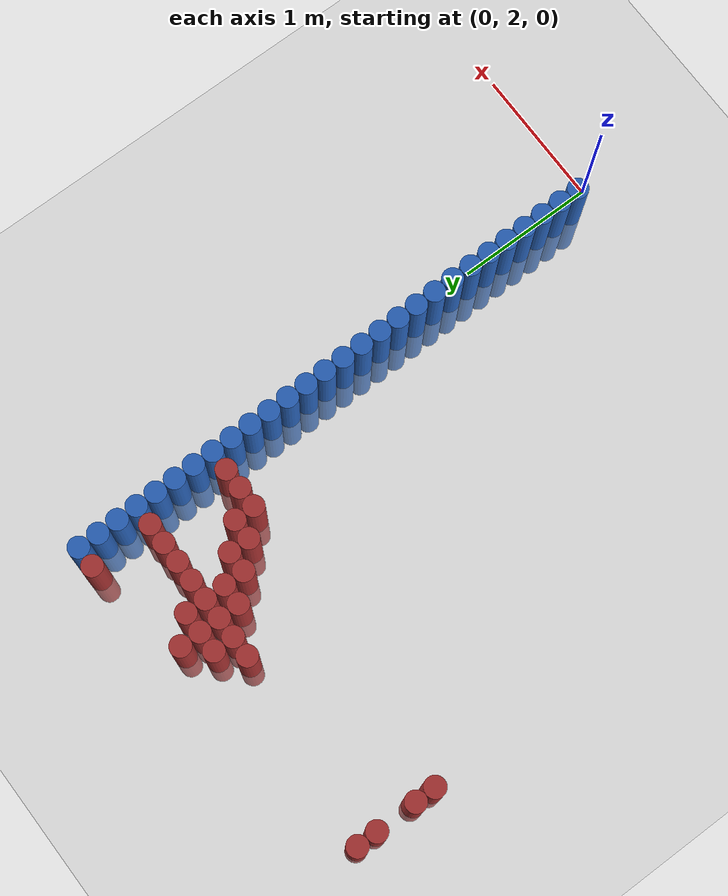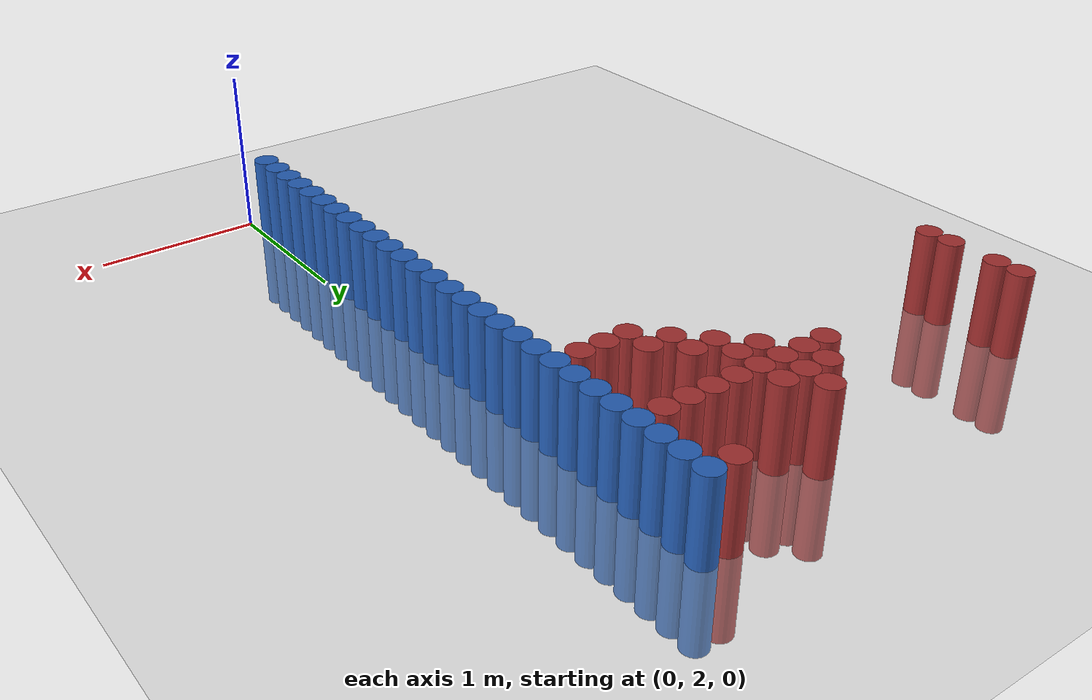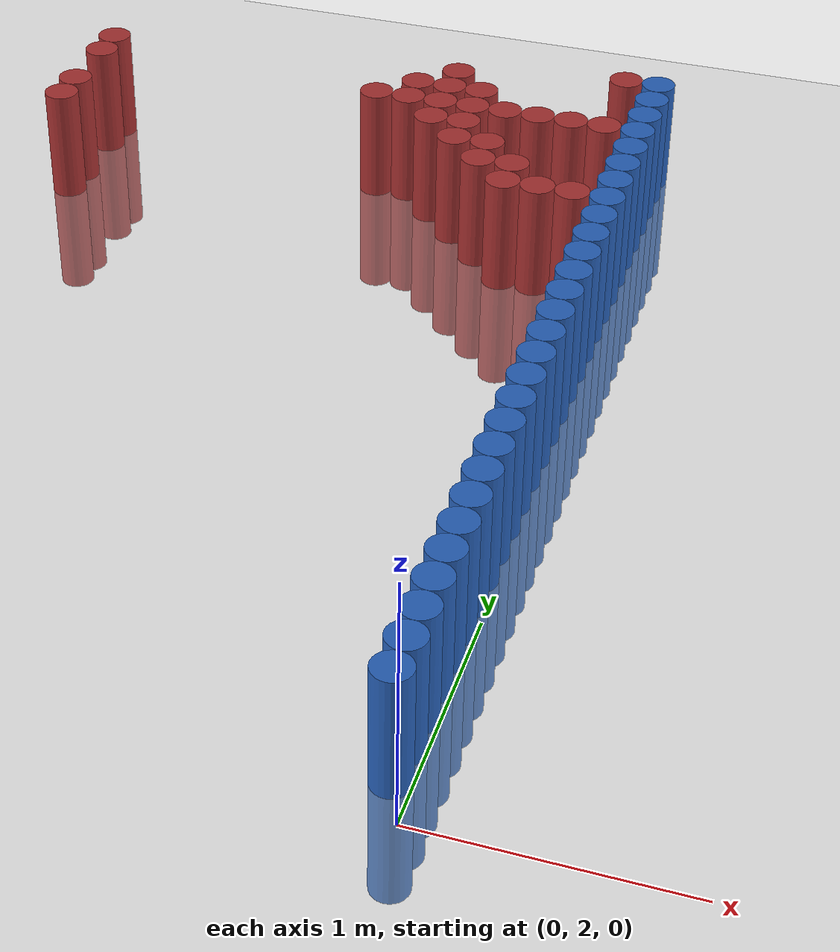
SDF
<sdf version="1.6">
 <world name="world_183">
  <model name="ground_plane">
   <static>1</static>
   <link name="link">
    <collision name="collision">
     <geometry><plane><normal>0 0 1</normal><size>100 100</size></plane></geometry>
     <surface><friction><ode><mu>100</mu><mu2>50</mu2></ode></friction></surface>
    </collision>
    <visual name="visual">
     <cast_shadows>0</cast_shadows>
     <geometry><plane><normal>0 0 1</normal><size>100 100</size></plane></geometry>
     <material>
      <script><uri>file://media/materials/scripts/gazebo.material</uri><name>Gazebo/Grey</name></script>
     </material>
    </visual>
   </link>
  </model>
  <model name="unit_cylinder_56">
   <static>1</static>
   <pose>-0.075000 2.175000 0.000000 0.000000 0.000000 0.000000</pose>
   <link name="link">
    <inertial>
     <mass>1</mass>
     <inertia><ixx>0.145833</ixx><ixy>0</ixy><ixz>0</ixz><iyy>0.145833</iyy><iyz>0</iyz><izz>0.125</izz></inertia>
    </inertial>
    <collision name="collision">
     <geometry><cylinder><radius>0.075000</radius><length>1</length></cylinder></geometry>
    </collision>
    <visual name="visual">
     <geometry><cylinder><radius>0.075000</radius><length>1</length></cylinder></geometry>
     <material>
      <ambient>0.152000 0.379000 0.720000 1</ambient>
      <diffuse>0.152000 0.379000 0.720000 1</diffuse>
     </material>
     <material>
      <script><name>Gazebo/Grey</name><uri>file://media/materials/scripts/gazebo.material</uri></script>
     </material>
    </visual>
   </link>
  </model>
  <model name="unit_cylinder_58">
   <static>1</static>
   <pose>-0.075000 2.325000 0.000000 0.000000 0.000000 0.000000</pose>
   <link name="link">
    <inertial>
     <mass>1</mass>
     <inertia><ixx>0.145833</ixx><ixy>0</ixy><ixz>0</ixz><iyy>0.145833</iyy><iyz>0</iyz><izz>0.125</izz></inertia>
    </inertial>
    <collision name="collision">
     <geometry><cylinder><radius>0.075000</radius><length>1</length></cylinder></geometry>
    </collision>
    <visual name="visual">
     <geometry><cylinder><radius>0.075000</radius><length>1</length></cylinder></geometry>
     <material>
      <ambient>0.152000 0.379000 0.720000 1</ambient>
      <diffuse>0.152000 0.379000 0.720000 1</diffuse>
     </material>
     <material>
      <script><name>Gazebo/Grey</name><uri>file://media/materials/scripts/gazebo.material</uri></script>
     </material>
    </visual>
   </link>
  </model>
  <model name="unit_cylinder_60">
   <static>1</static>
   <pose>-0.075000 2.475000 0.000000 0.000000 0.000000 0.000000</pose>
   <link name="link">
    <inertial>
     <mass>1</mass>
     <inertia><ixx>0.145833</ixx><ixy>0</ixy><ixz>0</ixz><iyy>0.145833</iyy><iyz>0</iyz><izz>0.125</izz></inertia>
    </inertial>
    <collision name="collision">
     <geometry><cylinder><radius>0.075000</radius><length>1</length></cylinder></geometry>
    </collision>
    <visual name="visual">
     <geometry><cylinder><radius>0.075000</radius><length>1</length></cylinder></geometry>
     <material>
      <ambient>0.152000 0.379000 0.720000 1</ambient>
      <diffuse>0.152000 0.379000 0.720000 1</diffuse>
     </material>
     <material>
      <script><name>Gazebo/Grey</name><uri>file://media/materials/scripts/gazebo.material</uri></script>
     </material>
    </visual>
   </link>
  </model>
  <model name="unit_cylinder_62">
   <static>1</static>
   <pose>-0.075000 2.625000 0.000000 0.000000 0.000000 0.000000</pose>
   <link name="link">
    <inertial>
     <mass>1</mass>
     <inertia><ixx>0.145833</ixx><ixy>0</ixy><ixz>0</ixz><iyy>0.145833</iyy><iyz>0</iyz><izz>0.125</izz></inertia>
    </inertial>
    <collision name="collision">
     <geometry><cylinder><radius>0.075000</radius><length>1</length></cylinder></geometry>
    </collision>
    <visual name="visual">
     <geometry><cylinder><radius>0.075000</radius><length>1</length></cylinder></geometry>
     <material>
      <ambient>0.152000 0.379000 0.720000 1</ambient>
      <diffuse>0.152000 0.379000 0.720000 1</diffuse>
     </material>
     <material>
      <script><name>Gazebo/Grey</name><uri>file://media/materials/scripts/gazebo.material</uri></script>
     </material>
    </visual>
   </link>
  </model>
  <model name="unit_cylinder_64">
   <static>1</static>
   <pose>-0.075000 2.775000 0.000000 0.000000 0.000000 0.000000</pose>
   <link name="link">
    <inertial>
     <mass>1</mass>
     <inertia><ixx>0.145833</ixx><ixy>0</ixy><ixz>0</ixz><iyy>0.145833</iyy><iyz>0</iyz><izz>0.125</izz></inertia>
    </inertial>
    <collision name="collision">
     <geometry><cylinder><radius>0.075000</radius><length>1</length></cylinder></geometry>
    </collision>
    <visual name="visual">
     <geometry><cylinder><radius>0.075000</radius><length>1</length></cylinder></geometry>
     <material>
      <ambient>0.152000 0.379000 0.720000 1</ambient>
      <diffuse>0.152000 0.379000 0.720000 1</diffuse>
     </material>
     <material>
      <script><name>Gazebo/Grey</name><uri>file://media/materials/scripts/gazebo.material</uri></script>
     </material>
    </visual>
   </link>
  </model>
  <model name="unit_cylinder_66">
   <static>1</static>
   <pose>-0.075000 2.925000 0.000000 0.000000 0.000000 0.000000</pose>
   <link name="link">
    <inertial>
     <mass>1</mass>
     <inertia><ixx>0.145833</ixx><ixy>0</ixy><ixz>0</ixz><iyy>0.145833</iyy><iyz>0</iyz><izz>0.125</izz></inertia>
    </inertial>
    <collision name="collision">
     <geometry><cylinder><radius>0.075000</radius><length>1</length></cylinder></geometry>
    </collision>
    <visual name="visual">
     <geometry><cylinder><radius>0.075000</radius><length>1</length></cylinder></geometry>
     <material>
      <ambient>0.152000 0.379000 0.720000 1</ambient>
      <diffuse>0.152000 0.379000 0.720000 1</diffuse>
     </material>
     <material>
      <script><name>Gazebo/Grey</name><uri>file://media/materials/scripts/gazebo.material</uri></script>
     </material>
    </visual>
   </link>
  </model>
  <model name="unit_cylinder_68">
   <static>1</static>
   <pose>-0.075000 3.075000 0.000000 0.000000 0.000000 0.000000</pose>
   <link name="link">
    <inertial>
     <mass>1</mass>
     <inertia><ixx>0.145833</ixx><ixy>0</ixy><ixz>0</ixz><iyy>0.145833</iyy><iyz>0</iyz><izz>0.125</izz></inertia>
    </inertial>
    <collision name="collision">
     <geometry><cylinder><radius>0.075000</radius><length>1</length></cylinder></geometry>
    </collision>
    <visual name="visual">
     <geometry><cylinder><radius>0.075000</radius><length>1</length></cylinder></geometry>
     <material>
      <ambient>0.152000 0.379000 0.720000 1</ambient>
      <diffuse>0.152000 0.379000 0.720000 1</diffuse>
     </material>
     <material>
      <script><name>Gazebo/Grey</name><uri>file://media/materials/scripts/gazebo.material</uri></script>
     </material>
    </visual>
   </link>
  </model>
  <model name="unit_cylinder_70">
   <static>1</static>
   <pose>-0.075000 3.225000 0.000000 0.000000 0.000000 0.000000</pose>
   <link name="link">
    <inertial>
     <mass>1</mass>
     <inertia><ixx>0.145833</ixx><ixy>0</ixy><ixz>0</ixz><iyy>0.145833</iyy><iyz>0</iyz><izz>0.125</izz></inertia>
    </inertial>
    <collision name="collision">
     <geometry><cylinder><radius>0.075000</radius><length>1</length></cylinder></geometry>
    </collision>
    <visual name="visual">
     <geometry><cylinder><radius>0.075000</radius><length>1</length></cylinder></geometry>
     <material>
      <ambient>0.152000 0.379000 0.720000 1</ambient>
      <diffuse>0.152000 0.379000 0.720000 1</diffuse>
     </material>
     <material>
      <script><name>Gazebo/Grey</name><uri>file://media/materials/scripts/gazebo.material</uri></script>
     </material>
    </visual>
   </link>
  </model>
  <model name="unit_cylinder_72">
   <static>1</static>
   <pose>-0.075000 3.375000 0.000000 0.000000 0.000000 0.000000</pose>
   <link name="link">
    <inertial>
     <mass>1</mass>
     <inertia><ixx>0.145833</ixx><ixy>0</ixy><ixz>0</ixz><iyy>0.145833</iyy><iyz>0</iyz><izz>0.125</izz></inertia>
    </inertial>
    <collision name="collision">
     <geometry><cylinder><radius>0.075000</radius><length>1</length></cylinder></geometry>
    </collision>
    <visual name="visual">
     <geometry><cylinder><radius>0.075000</radius><length>1</length></cylinder></geometry>
     <material>
      <ambient>0.152000 0.379000 0.720000 1</ambient>
      <diffuse>0.152000 0.379000 0.720000 1</diffuse>
     </material>
     <material>
      <script><name>Gazebo/Grey</name><uri>file://media/materials/scripts/gazebo.material</uri></script>
     </material>
    </visual>
   </link>
  </model>
  <model name="unit_cylinder_74">
   <static>1</static>
   <pose>-0.075000 3.525000 0.000000 0.000000 0.000000 0.000000</pose>
   <link name="link">
    <inertial>
     <mass>1</mass>
     <inertia><ixx>0.145833</ixx><ixy>0</ixy><ixz>0</ixz><iyy>0.145833</iyy><iyz>0</iyz><izz>0.125</izz></inertia>
    </inertial>
    <collision name="collision">
     <geometry><cylinder><radius>0.075000</radius><length>1</length></cylinder></geometry>
    </collision>
    <visual name="visual">
     <geometry><cylinder><radius>0.075000</radius><length>1</length></cylinder></geometry>
     <material>
      <ambient>0.152000 0.379000 0.720000 1</ambient>
      <diffuse>0.152000 0.379000 0.720000 1</diffuse>
     </material>
     <material>
      <script><name>Gazebo/Grey</name><uri>file://media/materials/scripts/gazebo.material</uri></script>
     </material>
    </visual>
   </link>
  </model>
  <model name="unit_cylinder_76">
   <static>1</static>
   <pose>-0.075000 3.675000 0.000000 0.000000 0.000000 0.000000</pose>
   <link name="link">
    <inertial>
     <mass>1</mass>
     <inertia><ixx>0.145833</ixx><ixy>0</ixy><ixz>0</ixz><iyy>0.145833</iyy><iyz>0</iyz><izz>0.125</izz></inertia>
    </inertial>
    <collision name="collision">
     <geometry><cylinder><radius>0.075000</radius><length>1</length></cylinder></geometry>
    </collision>
    <visual name="visual">
     <geometry><cylinder><radius>0.075000</radius><length>1</length></cylinder></geometry>
     <material>
      <ambient>0.152000 0.379000 0.720000 1</ambient>
      <diffuse>0.152000 0.379000 0.720000 1</diffuse>
     </material>
     <material>
      <script><name>Gazebo/Grey</name><uri>file://media/materials/scripts/gazebo.material</uri></script>
     </material>
    </visual>
   </link>
  </model>
  <model name="unit_cylinder_78">
   <static>1</static>
   <pose>-0.075000 3.825000 0.000000 0.000000 0.000000 0.000000</pose>
   <link name="link">
    <inertial>
     <mass>1</mass>
     <inertia><ixx>0.145833</ixx><ixy>0</ixy><ixz>0</ixz><iyy>0.145833</iyy><iyz>0</iyz><izz>0.125</izz></inertia>
    </inertial>
    <collision name="collision">
     <geometry><cylinder><radius>0.075000</radius><length>1</length></cylinder></geometry>
    </collision>
    <visual name="visual">
     <geometry><cylinder><radius>0.075000</radius><length>1</length></cylinder></geometry>
     <material>
      <ambient>0.152000 0.379000 0.720000 1</ambient>
      <diffuse>0.152000 0.379000 0.720000 1</diffuse>
     </material>
     <material>
      <script><name>Gazebo/Grey</name><uri>file://media/materials/scripts/gazebo.material</uri></script>
     </material>
    </visual>
   </link>
  </model>
  <model name="unit_cylinder_80">
   <static>1</static>
   <pose>-0.075000 3.975000 0.000000 0.000000 0.000000 0.000000</pose>
   <link name="link">
    <inertial>
     <mass>1</mass>
     <inertia><ixx>0.145833</ixx><ixy>0</ixy><ixz>0</ixz><iyy>0.145833</iyy><iyz>0</iyz><izz>0.125</izz></inertia>
    </inertial>
    <collision name="collision">
     <geometry><cylinder><radius>0.075000</radius><length>1</length></cylinder></geometry>
    </collision>
    <visual name="visual">
     <geometry><cylinder><radius>0.075000</radius><length>1</length></cylinder></geometry>
     <material>
      <ambient>0.152000 0.379000 0.720000 1</ambient>
      <diffuse>0.152000 0.379000 0.720000 1</diffuse>
     </material>
     <material>
      <script><name>Gazebo/Grey</name><uri>file://media/materials/scripts/gazebo.material</uri></script>
     </material>
    </visual>
   </link>
  </model>
  <model name="unit_cylinder_82">
   <static>1</static>
   <pose>-0.075000 4.125000 0.000000 0.000000 0.000000 0.000000</pose>
   <link name="link">
    <inertial>
     <mass>1</mass>
     <inertia><ixx>0.145833</ixx><ixy>0</ixy><ixz>0</ixz><iyy>0.145833</iyy><iyz>0</iyz><izz>0.125</izz></inertia>
    </inertial>
    <collision name="collision">
     <geometry><cylinder><radius>0.075000</radius><length>1</length></cylinder></geometry>
    </collision>
    <visual name="visual">
     <geometry><cylinder><radius>0.075000</radius><length>1</length></cylinder></geometry>
     <material>
      <ambient>0.152000 0.379000 0.720000 1</ambient>
      <diffuse>0.152000 0.379000 0.720000 1</diffuse>
     </material>
     <material>
      <script><name>Gazebo/Grey</name><uri>file://media/materials/scripts/gazebo.material</uri></script>
     </material>
    </visual>
   </link>
  </model>
  <model name="unit_cylinder_84">
   <static>1</static>
   <pose>-0.075000 4.275000 0.000000 0.000000 0.000000 0.000000</pose>
   <link name="link">
    <inertial>
     <mass>1</mass>
     <inertia><ixx>0.145833</ixx><ixy>0</ixy><ixz>0</ixz><iyy>0.145833</iyy><iyz>0</iyz><izz>0.125</izz></inertia>
    </inertial>
    <collision name="collision">
     <geometry><cylinder><radius>0.075000</radius><length>1</length></cylinder></geometry>
    </collision>
    <visual name="visual">
     <geometry><cylinder><radius>0.075000</radius><length>1</length></cylinder></geometry>
     <material>
      <ambient>0.152000 0.379000 0.720000 1</ambient>
      <diffuse>0.152000 0.379000 0.720000 1</diffuse>
     </material>
     <material>
      <script><name>Gazebo/Grey</name><uri>file://media/materials/scripts/gazebo.material</uri></script>
     </material>
    </visual>
   </link>
  </model>
  <model name="unit_cylinder_86">
   <static>1</static>
   <pose>-0.075000 4.425000 0.000000 0.000000 0.000000 0.000000</pose>
   <link name="link">
    <inertial>
     <mass>1</mass>
     <inertia><ixx>0.145833</ixx><ixy>0</ixy><ixz>0</ixz><iyy>0.145833</iyy><iyz>0</iyz><izz>0.125</izz></inertia>
    </inertial>
    <collision name="collision">
     <geometry><cylinder><radius>0.075000</radius><length>1</length></cylinder></geometry>
    </collision>
    <visual name="visual">
     <geometry><cylinder><radius>0.075000</radius><length>1</length></cylinder></geometry>
     <material>
      <ambient>0.152000 0.379000 0.720000 1</ambient>
      <diffuse>0.152000 0.379000 0.720000 1</diffuse>
     </material>
     <material>
      <script><name>Gazebo/Grey</name><uri>file://media/materials/scripts/gazebo.material</uri></script>
     </material>
    </visual>
   </link>
  </model>
  <model name="unit_cylinder_88">
   <static>1</static>
   <pose>-0.075000 4.575000 0.000000 0.000000 0.000000 0.000000</pose>
   <link name="link">
    <inertial>
     <mass>1</mass>
     <inertia><ixx>0.145833</ixx><ixy>0</ixy><ixz>0</ixz><iyy>0.145833</iyy><iyz>0</iyz><izz>0.125</izz></inertia>
    </inertial>
    <collision name="collision">
     <geometry><cylinder><radius>0.075000</radius><length>1</length></cylinder></geometry>
    </collision>
    <visual name="visual">
     <geometry><cylinder><radius>0.075000</radius><length>1</length></cylinder></geometry>
     <material>
      <ambient>0.152000 0.379000 0.720000 1</ambient>
      <diffuse>0.152000 0.379000 0.720000 1</diffuse>
     </material>
     <material>
      <script><name>Gazebo/Grey</name><uri>file://media/materials/scripts/gazebo.material</uri></script>
     </material>
    </visual>
   </link>
  </model>
  <model name="unit_cylinder_90">
   <static>1</static>
   <pose>-0.075000 4.725000 0.000000 0.000000 0.000000 0.000000</pose>
   <link name="link">
    <inertial>
     <mass>1</mass>
     <inertia><ixx>0.145833</ixx><ixy>0</ixy><ixz>0</ixz><iyy>0.145833</iyy><iyz>0</iyz><izz>0.125</izz></inertia>
    </inertial>
    <collision name="collision">
     <geometry><cylinder><radius>0.075000</radius><length>1</length></cylinder></geometry>
    </collision>
    <visual name="visual">
     <geometry><cylinder><radius>0.075000</radius><length>1</length></cylinder></geometry>
     <material>
      <ambient>0.152000 0.379000 0.720000 1</ambient>
      <diffuse>0.152000 0.379000 0.720000 1</diffuse>
     </material>
     <material>
      <script><name>Gazebo/Grey</name><uri>file://media/materials/scripts/gazebo.material</uri></script>
     </material>
    </visual>
   </link>
  </model>
  <model name="unit_cylinder_92">
   <static>1</static>
   <pose>-0.075000 4.875000 0.000000 0.000000 0.000000 0.000000</pose>
   <link name="link">
    <inertial>
     <mass>1</mass>
     <inertia><ixx>0.145833</ixx><ixy>0</ixy><ixz>0</ixz><iyy>0.145833</iyy><iyz>0</iyz><izz>0.125</izz></inertia>
    </inertial>
    <collision name="collision">
     <geometry><cylinder><radius>0.075000</radius><length>1</length></cylinder></geometry>
    </collision>
    <visual name="visual">
     <geometry><cylinder><radius>0.075000</radius><length>1</length></cylinder></geometry>
     <material>
      <ambient>0.152000 0.379000 0.720000 1</ambient>
      <diffuse>0.152000 0.379000 0.720000 1</diffuse>
     </material>
     <material>
      <script><name>Gazebo/Grey</name><uri>file://media/materials/scripts/gazebo.material</uri></script>
     </material>
    </visual>
   </link>
  </model>
  <model name="unit_cylinder_94">
   <static>1</static>
   <pose>-0.075000 5.025000 0.000000 0.000000 0.000000 0.000000</pose>
   <link name="link">
    <inertial>
     <mass>1</mass>
     <inertia><ixx>0.145833</ixx><ixy>0</ixy><ixz>0</ixz><iyy>0.145833</iyy><iyz>0</iyz><izz>0.125</izz></inertia>
    </inertial>
    <collision name="collision">
     <geometry><cylinder><radius>0.075000</radius><length>1</length></cylinder></geometry>
    </collision>
    <visual name="visual">
     <geometry><cylinder><radius>0.075000</radius><length>1</length></cylinder></geometry>
     <material>
      <ambient>0.152000 0.379000 0.720000 1</ambient>
      <diffuse>0.152000 0.379000 0.720000 1</diffuse>
     </material>
     <material>
      <script><name>Gazebo/Grey</name><uri>file://media/materials/scripts/gazebo.material</uri></script>
     </material>
    </visual>
   </link>
  </model>
  <model name="unit_cylinder_204">
   <static>1</static>
   <pose>-2.625000 5.325000 0.000000 0.000000 0.000000 0.000000</pose>
   <link name="link">
    <inertial>
     <mass>1</mass>
     <inertia><ixx>0.145833</ixx><ixy>0</ixy><ixz>0</ixz><iyy>0.145833</iyy><iyz>0</iyz><izz>0.125</izz></inertia>
    </inertial>
    <collision name="collision">
     <geometry><cylinder><radius>0.075000</radius><length>1</length></cylinder></geometry>
    </collision>
    <visual name="visual">
     <geometry><cylinder><radius>0.075000</radius><length>1</length></cylinder></geometry>
     <material>
      <ambient>0.648000 0.192000 0.192000 1</ambient>
      <diffuse>0.648000 0.192000 0.192000 1</diffuse>
     </material>
     <material>
      <script><name>Gazebo/Grey</name><uri>file://media/materials/scripts/gazebo.material</uri></script>
     </material>
    </visual>
   </link>
  </model>
  <model name="unit_cylinder_205">
   <static>1</static>
   <pose>-2.625000 5.475000 0.000000 0.000000 0.000000 0.000000</pose>
   <link name="link">
    <inertial>
     <mass>1</mass>
     <inertia><ixx>0.145833</ixx><ixy>0</ixy><ixz>0</ixz><iyy>0.145833</iyy><iyz>0</iyz><izz>0.125</izz></inertia>
    </inertial>
    <collision name="collision">
     <geometry><cylinder><radius>0.075000</radius><length>1</length></cylinder></geometry>
    </collision>
    <visual name="visual">
     <geometry><cylinder><radius>0.075000</radius><length>1</length></cylinder></geometry>
     <material>
      <ambient>0.648000 0.192000 0.192000 1</ambient>
      <diffuse>0.648000 0.192000 0.192000 1</diffuse>
     </material>
     <material>
      <script><name>Gazebo/Grey</name><uri>file://media/materials/scripts/gazebo.material</uri></script>
     </material>
    </visual>
   </link>
  </model>
  <model name="unit_cylinder_206">
   <static>1</static>
   <pose>-2.625000 5.775000 0.000000 0.000000 0.000000 0.000000</pose>
   <link name="link">
    <inertial>
     <mass>1</mass>
     <inertia><ixx>0.145833</ixx><ixy>0</ixy><ixz>0</ixz><iyy>0.145833</iyy><iyz>0</iyz><izz>0.125</izz></inertia>
    </inertial>
    <collision name="collision">
     <geometry><cylinder><radius>0.075000</radius><length>1</length></cylinder></geometry>
    </collision>
    <visual name="visual">
     <geometry><cylinder><radius>0.075000</radius><length>1</length></cylinder></geometry>
     <material>
      <ambient>0.648000 0.192000 0.192000 1</ambient>
      <diffuse>0.648000 0.192000 0.192000 1</diffuse>
     </material>
     <material>
      <script><name>Gazebo/Grey</name><uri>file://media/materials/scripts/gazebo.material</uri></script>
     </material>
    </visual>
   </link>
  </model>
  <model name="unit_cylinder_207">
   <static>1</static>
   <pose>-2.625000 5.925000 0.000000 0.000000 0.000000 0.000000</pose>
   <link name="link">
    <inertial>
     <mass>1</mass>
     <inertia><ixx>0.145833</ixx><ixy>0</ixy><ixz>0</ixz><iyy>0.145833</iyy><iyz>0</iyz><izz>0.125</izz></inertia>
    </inertial>
    <collision name="collision">
     <geometry><cylinder><radius>0.075000</radius><length>1</length></cylinder></geometry>
    </collision>
    <visual name="visual">
     <geometry><cylinder><radius>0.075000</radius><length>1</length></cylinder></geometry>
     <material>
      <ambient>0.648000 0.192000 0.192000 1</ambient>
      <diffuse>0.648000 0.192000 0.192000 1</diffuse>
     </material>
     <material>
      <script><name>Gazebo/Grey</name><uri>file://media/materials/scripts/gazebo.material</uri></script>
     </material>
    </visual>
   </link>
  </model>
  <model name="unit_cylinder_242">
   <static>1</static>
   <pose>-1.275000 5.775000 0.000000 0.000000 0.000000 0.000000</pose>
   <link name="link">
    <inertial>
     <mass>1</mass>
     <inertia><ixx>0.145833</ixx><ixy>0</ixy><ixz>0</ixz><iyy>0.145833</iyy><iyz>0</iyz><izz>0.125</izz></inertia>
    </inertial>
    <collision name="collision">
     <geometry><cylinder><radius>0.075000</radius><length>1</length></cylinder></geometry>
    </collision>
    <visual name="visual">
     <geometry><cylinder><radius>0.075000</radius><length>1</length></cylinder></geometry>
     <material>
      <ambient>0.648000 0.192000 0.192000 1</ambient>
      <diffuse>0.648000 0.192000 0.192000 1</diffuse>
     </material>
     <material>
      <script><name>Gazebo/Grey</name><uri>file://media/materials/scripts/gazebo.material</uri></script>
     </material>
    </visual>
   </link>
  </model>
  <model name="unit_cylinder_245">
   <static>1</static>
   <pose>-1.125000 5.775000 0.000000 0.000000 0.000000 0.000000</pose>
   <link name="link">
    <inertial>
     <mass>1</mass>
     <inertia><ixx>0.145833</ixx><ixy>0</ixy><ixz>0</ixz><iyy>0.145833</iyy><iyz>0</iyz><izz>0.125</izz></inertia>
    </inertial>
    <collision name="collision">
     <geometry><cylinder><radius>0.075000</radius><length>1</length></cylinder></geometry>
    </collision>
    <visual name="visual">
     <geometry><cylinder><radius>0.075000</radius><length>1</length></cylinder></geometry>
     <material>
      <ambient>0.648000 0.192000 0.192000 1</ambient>
      <diffuse>0.648000 0.192000 0.192000 1</diffuse>
     </material>
     <material>
      <script><name>Gazebo/Grey</name><uri>file://media/materials/scripts/gazebo.material</uri></script>
     </material>
    </visual>
   </link>
  </model>
  <model name="unit_cylinder_246">
   <static>1</static>
   <pose>-1.125000 5.925000 0.000000 0.000000 0.000000 0.000000</pose>
   <link name="link">
    <inertial>
     <mass>1</mass>
     <inertia><ixx>0.145833</ixx><ixy>0</ixy><ixz>0</ixz><iyy>0.145833</iyy><iyz>0</iyz><izz>0.125</izz></inertia>
    </inertial>
    <collision name="collision">
     <geometry><cylinder><radius>0.075000</radius><length>1</length></cylinder></geometry>
    </collision>
    <visual name="visual">
     <geometry><cylinder><radius>0.075000</radius><length>1</length></cylinder></geometry>
     <material>
      <ambient>0.648000 0.192000 0.192000 1</ambient>
      <diffuse>0.648000 0.192000 0.192000 1</diffuse>
     </material>
     <material>
      <script><name>Gazebo/Grey</name><uri>file://media/materials/scripts/gazebo.material</uri></script>
     </material>
    </visual>
   </link>
  </model>
  <model name="unit_cylinder_249">
   <static>1</static>
   <pose>-0.975000 5.625000 0.000000 0.000000 0.000000 0.000000</pose>
   <link name="link">
    <inertial>
     <mass>1</mass>
     <inertia><ixx>0.145833</ixx><ixy>0</ixy><ixz>0</ixz><iyy>0.145833</iyy><iyz>0</iyz><izz>0.125</izz></inertia>
    </inertial>
    <collision name="collision">
     <geometry><cylinder><radius>0.075000</radius><length>1</length></cylinder></geometry>
    </collision>
    <visual name="visual">
     <geometry><cylinder><radius>0.075000</radius><length>1</length></cylinder></geometry>
     <material>
      <ambient>0.648000 0.192000 0.192000 1</ambient>
      <diffuse>0.648000 0.192000 0.192000 1</diffuse>
     </material>
     <material>
      <script><name>Gazebo/Grey</name><uri>file://media/materials/scripts/gazebo.material</uri></script>
     </material>
    </visual>
   </link>
  </model>
  <model name="unit_cylinder_250">
   <static>1</static>
   <pose>-0.975000 5.775000 0.000000 0.000000 0.000000 0.000000</pose>
   <link name="link">
    <inertial>
     <mass>1</mass>
     <inertia><ixx>0.145833</ixx><ixy>0</ixy><ixz>0</ixz><iyy>0.145833</iyy><iyz>0</iyz><izz>0.125</izz></inertia>
    </inertial>
    <collision name="collision">
     <geometry><cylinder><radius>0.075000</radius><length>1</length></cylinder></geometry>
    </collision>
    <visual name="visual">
     <geometry><cylinder><radius>0.075000</radius><length>1</length></cylinder></geometry>
     <material>
      <ambient>0.648000 0.192000 0.192000 1</ambient>
      <diffuse>0.648000 0.192000 0.192000 1</diffuse>
     </material>
     <material>
      <script><name>Gazebo/Grey</name><uri>file://media/materials/scripts/gazebo.material</uri></script>
     </material>
    </visual>
   </link>
  </model>
  <model name="unit_cylinder_251">
   <static>1</static>
   <pose>-0.975000 5.925000 0.000000 0.000000 0.000000 0.000000</pose>
   <link name="link">
    <inertial>
     <mass>1</mass>
     <inertia><ixx>0.145833</ixx><ixy>0</ixy><ixz>0</ixz><iyy>0.145833</iyy><iyz>0</iyz><izz>0.125</izz></inertia>
    </inertial>
    <collision name="collision">
     <geometry><cylinder><radius>0.075000</radius><length>1</length></cylinder></geometry>
    </collision>
    <visual name="visual">
     <geometry><cylinder><radius>0.075000</radius><length>1</length></cylinder></geometry>
     <material>
      <ambient>0.648000 0.192000 0.192000 1</ambient>
      <diffuse>0.648000 0.192000 0.192000 1</diffuse>
     </material>
     <material>
      <script><name>Gazebo/Grey</name><uri>file://media/materials/scripts/gazebo.material</uri></script>
     </material>
    </visual>
   </link>
  </model>
  <model name="unit_cylinder_252">
   <static>1</static>
   <pose>-0.975000 6.075000 0.000000 0.000000 0.000000 0.000000</pose>
   <link name="link">
    <inertial>
     <mass>1</mass>
     <inertia><ixx>0.145833</ixx><ixy>0</ixy><ixz>0</ixz><iyy>0.145833</iyy><iyz>0</iyz><izz>0.125</izz></inertia>
    </inertial>
    <collision name="collision">
     <geometry><cylinder><radius>0.075000</radius><length>1</length></cylinder></geometry>
    </collision>
    <visual name="visual">
     <geometry><cylinder><radius>0.075000</radius><length>1</length></cylinder></geometry>
     <material>
      <ambient>0.648000 0.192000 0.192000 1</ambient>
      <diffuse>0.648000 0.192000 0.192000 1</diffuse>
     </material>
     <material>
      <script><name>Gazebo/Grey</name><uri>file://media/materials/scripts/gazebo.material</uri></script>
     </material>
    </visual>
   </link>
  </model>
  <model name="unit_cylinder_255">
   <static>1</static>
   <pose>-0.825000 5.475000 0.000000 0.000000 0.000000 0.000000</pose>
   <link name="link">
    <inertial>
     <mass>1</mass>
     <inertia><ixx>0.145833</ixx><ixy>0</ixy><ixz>0</ixz><iyy>0.145833</iyy><iyz>0</iyz><izz>0.125</izz></inertia>
    </inertial>
    <collision name="collision">
     <geometry><cylinder><radius>0.075000</radius><length>1</length></cylinder></geometry>
    </collision>
    <visual name="visual">
     <geometry><cylinder><radius>0.075000</radius><length>1</length></cylinder></geometry>
     <material>
      <ambient>0.648000 0.192000 0.192000 1</ambient>
      <diffuse>0.648000 0.192000 0.192000 1</diffuse>
     </material>
     <material>
      <script><name>Gazebo/Grey</name><uri>file://media/materials/scripts/gazebo.material</uri></script>
     </material>
    </visual>
   </link>
  </model>
  <model name="unit_cylinder_256">
   <static>1</static>
   <pose>-0.825000 5.625000 0.000000 0.000000 0.000000 0.000000</pose>
   <link name="link">
    <inertial>
     <mass>1</mass>
     <inertia><ixx>0.145833</ixx><ixy>0</ixy><ixz>0</ixz><iyy>0.145833</iyy><iyz>0</iyz><izz>0.125</izz></inertia>
    </inertial>
    <collision name="collision">
     <geometry><cylinder><radius>0.075000</radius><length>1</length></cylinder></geometry>
    </collision>
    <visual name="visual">
     <geometry><cylinder><radius>0.075000</radius><length>1</length></cylinder></geometry>
     <material>
      <ambient>0.648000 0.192000 0.192000 1</ambient>
      <diffuse>0.648000 0.192000 0.192000 1</diffuse>
     </material>
     <material>
      <script><name>Gazebo/Grey</name><uri>file://media/materials/scripts/gazebo.material</uri></script>
     </material>
    </visual>
   </link>
  </model>
  <model name="unit_cylinder_257">
   <static>1</static>
   <pose>-0.825000 5.775000 0.000000 0.000000 0.000000 0.000000</pose>
   <link name="link">
    <inertial>
     <mass>1</mass>
     <inertia><ixx>0.145833</ixx><ixy>0</ixy><ixz>0</ixz><iyy>0.145833</iyy><iyz>0</iyz><izz>0.125</izz></inertia>
    </inertial>
    <collision name="collision">
     <geometry><cylinder><radius>0.075000</radius><length>1</length></cylinder></geometry>
    </collision>
    <visual name="visual">
     <geometry><cylinder><radius>0.075000</radius><length>1</length></cylinder></geometry>
     <material>
      <ambient>0.648000 0.192000 0.192000 1</ambient>
      <diffuse>0.648000 0.192000 0.192000 1</diffuse>
     </material>
     <material>
      <script><name>Gazebo/Grey</name><uri>file://media/materials/scripts/gazebo.material</uri></script>
     </material>
    </visual>
   </link>
  </model>
  <model name="unit_cylinder_258">
   <static>1</static>
   <pose>-0.825000 5.925000 0.000000 0.000000 0.000000 0.000000</pose>
   <link name="link">
    <inertial>
     <mass>1</mass>
     <inertia><ixx>0.145833</ixx><ixy>0</ixy><ixz>0</ixz><iyy>0.145833</iyy><iyz>0</iyz><izz>0.125</izz></inertia>
    </inertial>
    <collision name="collision">
     <geometry><cylinder><radius>0.075000</radius><length>1</length></cylinder></geometry>
    </collision>
    <visual name="visual">
     <geometry><cylinder><radius>0.075000</radius><length>1</length></cylinder></geometry>
     <material>
      <ambient>0.648000 0.192000 0.192000 1</ambient>
      <diffuse>0.648000 0.192000 0.192000 1</diffuse>
     </material>
     <material>
      <script><name>Gazebo/Grey</name><uri>file://media/materials/scripts/gazebo.material</uri></script>
     </material>
    </visual>
   </link>
  </model>
  <model name="unit_cylinder_260">
   <static>1</static>
   <pose>-0.675000 5.325000 0.000000 0.000000 0.000000 0.000000</pose>
   <link name="link">
    <inertial>
     <mass>1</mass>
     <inertia><ixx>0.145833</ixx><ixy>0</ixy><ixz>0</ixz><iyy>0.145833</iyy><iyz>0</iyz><izz>0.125</izz></inertia>
    </inertial>
    <collision name="collision">
     <geometry><cylinder><radius>0.075000</radius><length>1</length></cylinder></geometry>
    </collision>
    <visual name="visual">
     <geometry><cylinder><radius>0.075000</radius><length>1</length></cylinder></geometry>
     <material>
      <ambient>0.648000 0.192000 0.192000 1</ambient>
      <diffuse>0.648000 0.192000 0.192000 1</diffuse>
     </material>
     <material>
      <script><name>Gazebo/Grey</name><uri>file://media/materials/scripts/gazebo.material</uri></script>
     </material>
    </visual>
   </link>
  </model>
  <model name="unit_cylinder_261">
   <static>1</static>
   <pose>-0.675000 5.475000 0.000000 0.000000 0.000000 0.000000</pose>
   <link name="link">
    <inertial>
     <mass>1</mass>
     <inertia><ixx>0.145833</ixx><ixy>0</ixy><ixz>0</ixz><iyy>0.145833</iyy><iyz>0</iyz><izz>0.125</izz></inertia>
    </inertial>
    <collision name="collision">
     <geometry><cylinder><radius>0.075000</radius><length>1</length></cylinder></geometry>
    </collision>
    <visual name="visual">
     <geometry><cylinder><radius>0.075000</radius><length>1</length></cylinder></geometry>
     <material>
      <ambient>0.648000 0.192000 0.192000 1</ambient>
      <diffuse>0.648000 0.192000 0.192000 1</diffuse>
     </material>
     <material>
      <script><name>Gazebo/Grey</name><uri>file://media/materials/scripts/gazebo.material</uri></script>
     </material>
    </visual>
   </link>
  </model>
  <model name="unit_cylinder_262">
   <static>1</static>
   <pose>-0.675000 5.775000 0.000000 0.000000 0.000000 0.000000</pose>
   <link name="link">
    <inertial>
     <mass>1</mass>
     <inertia><ixx>0.145833</ixx><ixy>0</ixy><ixz>0</ixz><iyy>0.145833</iyy><iyz>0</iyz><izz>0.125</izz></inertia>
    </inertial>
    <collision name="collision">
     <geometry><cylinder><radius>0.075000</radius><length>1</length></cylinder></geometry>
    </collision>
    <visual name="visual">
     <geometry><cylinder><radius>0.075000</radius><length>1</length></cylinder></geometry>
     <material>
      <ambient>0.648000 0.192000 0.192000 1</ambient>
      <diffuse>0.648000 0.192000 0.192000 1</diffuse>
     </material>
     <material>
      <script><name>Gazebo/Grey</name><uri>file://media/materials/scripts/gazebo.material</uri></script>
     </material>
    </visual>
   </link>
  </model>
  <model name="unit_cylinder_263">
   <static>1</static>
   <pose>-0.525000 5.175000 0.000000 0.000000 0.000000 0.000000</pose>
   <link name="link">
    <inertial>
     <mass>1</mass>
     <inertia><ixx>0.145833</ixx><ixy>0</ixy><ixz>0</ixz><iyy>0.145833</iyy><iyz>0</iyz><izz>0.125</izz></inertia>
    </inertial>
    <collision name="collision">
     <geometry><cylinder><radius>0.075000</radius><length>1</length></cylinder></geometry>
    </collision>
    <visual name="visual">
     <geometry><cylinder><radius>0.075000</radius><length>1</length></cylinder></geometry>
     <material>
      <ambient>0.648000 0.192000 0.192000 1</ambient>
      <diffuse>0.648000 0.192000 0.192000 1</diffuse>
     </material>
     <material>
      <script><name>Gazebo/Grey</name><uri>file://media/materials/scripts/gazebo.material</uri></script>
     </material>
    </visual>
   </link>
  </model>
  <model name="unit_cylinder_264">
   <static>1</static>
   <pose>-0.525000 5.325000 0.000000 0.000000 0.000000 0.000000</pose>
   <link name="link">
    <inertial>
     <mass>1</mass>
     <inertia><ixx>0.145833</ixx><ixy>0</ixy><ixz>0</ixz><iyy>0.145833</iyy><iyz>0</iyz><izz>0.125</izz></inertia>
    </inertial>
    <collision name="collision">
     <geometry><cylinder><radius>0.075000</radius><length>1</length></cylinder></geometry>
    </collision>
    <visual name="visual">
     <geometry><cylinder><radius>0.075000</radius><length>1</length></cylinder></geometry>
     <material>
      <ambient>0.648000 0.192000 0.192000 1</ambient>
      <diffuse>0.648000 0.192000 0.192000 1</diffuse>
     </material>
     <material>
      <script><name>Gazebo/Grey</name><uri>file://media/materials/scripts/gazebo.material</uri></script>
     </material>
    </visual>
   </link>
  </model>
  <model name="unit_cylinder_265">
   <static>1</static>
   <pose>-0.525000 5.775000 0.000000 0.000000 0.000000 0.000000</pose>
   <link name="link">
    <inertial>
     <mass>1</mass>
     <inertia><ixx>0.145833</ixx><ixy>0</ixy><ixz>0</ixz><iyy>0.145833</iyy><iyz>0</iyz><izz>0.125</izz></inertia>
    </inertial>
    <collision name="collision">
     <geometry><cylinder><radius>0.075000</radius><length>1</length></cylinder></geometry>
    </collision>
    <visual name="visual">
     <geometry><cylinder><radius>0.075000</radius><length>1</length></cylinder></geometry>
     <material>
      <ambient>0.648000 0.192000 0.192000 1</ambient>
      <diffuse>0.648000 0.192000 0.192000 1</diffuse>
     </material>
     <material>
      <script><name>Gazebo/Grey</name><uri>file://media/materials/scripts/gazebo.material</uri></script>
     </material>
    </visual>
   </link>
  </model>
  <model name="unit_cylinder_269">
   <static>1</static>
   <pose>-0.375000 5.175000 0.000000 0.000000 0.000000 0.000000</pose>
   <link name="link">
    <inertial>
     <mass>1</mass>
     <inertia><ixx>0.145833</ixx><ixy>0</ixy><ixz>0</ixz><iyy>0.145833</iyy><iyz>0</iyz><izz>0.125</izz></inertia>
    </inertial>
    <collision name="collision">
     <geometry><cylinder><radius>0.075000</radius><length>1</length></cylinder></geometry>
    </collision>
    <visual name="visual">
     <geometry><cylinder><radius>0.075000</radius><length>1</length></cylinder></geometry>
     <material>
      <ambient>0.648000 0.192000 0.192000 1</ambient>
      <diffuse>0.648000 0.192000 0.192000 1</diffuse>
     </material>
     <material>
      <script><name>Gazebo/Grey</name><uri>file://media/materials/scripts/gazebo.material</uri></script>
     </material>
    </visual>
   </link>
  </model>
  <model name="unit_cylinder_270">
   <static>1</static>
   <pose>-0.375000 5.775000 0.000000 0.000000 0.000000 0.000000</pose>
   <link name="link">
    <inertial>
     <mass>1</mass>
     <inertia><ixx>0.145833</ixx><ixy>0</ixy><ixz>0</ixz><iyy>0.145833</iyy><iyz>0</iyz><izz>0.125</izz></inertia>
    </inertial>
    <collision name="collision">
     <geometry><cylinder><radius>0.075000</radius><length>1</length></cylinder></geometry>
    </collision>
    <visual name="visual">
     <geometry><cylinder><radius>0.075000</radius><length>1</length></cylinder></geometry>
     <material>
      <ambient>0.648000 0.192000 0.192000 1</ambient>
      <diffuse>0.648000 0.192000 0.192000 1</diffuse>
     </material>
     <material>
      <script><name>Gazebo/Grey</name><uri>file://media/materials/scripts/gazebo.material</uri></script>
     </material>
    </visual>
   </link>
  </model>
  <model name="unit_cylinder_284">
   <static>1</static>
   <pose>-0.225000 5.175000 0.000000 0.000000 0.000000 0.000000</pose>
   <link name="link">
    <inertial>
     <mass>1</mass>
     <inertia><ixx>0.145833</ixx><ixy>0</ixy><ixz>0</ixz><iyy>0.145833</iyy><iyz>0</iyz><izz>0.125</izz></inertia>
    </inertial>
    <collision name="collision">
     <geometry><cylinder><radius>0.075000</radius><length>1</length></cylinder></geometry>
    </collision>
    <visual name="visual">
     <geometry><cylinder><radius>0.075000</radius><length>1</length></cylinder></geometry>
     <material>
      <ambient>0.648000 0.192000 0.192000 1</ambient>
      <diffuse>0.648000 0.192000 0.192000 1</diffuse>
     </material>
     <material>
      <script><name>Gazebo/Grey</name><uri>file://media/materials/scripts/gazebo.material</uri></script>
     </material>
    </visual>
   </link>
  </model>
  <model name="unit_cylinder_285">
   <static>1</static>
   <pose>-0.225000 5.775000 0.000000 0.000000 0.000000 0.000000</pose>
   <link name="link">
    <inertial>
     <mass>1</mass>
     <inertia><ixx>0.145833</ixx><ixy>0</ixy><ixz>0</ixz><iyy>0.145833</iyy><iyz>0</iyz><izz>0.125</izz></inertia>
    </inertial>
    <collision name="collision">
     <geometry><cylinder><radius>0.075000</radius><length>1</length></cylinder></geometry>
    </collision>
    <visual name="visual">
     <geometry><cylinder><radius>0.075000</radius><length>1</length></cylinder></geometry>
     <material>
      <ambient>0.648000 0.192000 0.192000 1</ambient>
      <diffuse>0.648000 0.192000 0.192000 1</diffuse>
     </material>
     <material>
      <script><name>Gazebo/Grey</name><uri>file://media/materials/scripts/gazebo.material</uri></script>
     </material>
    </visual>
   </link>
  </model>
  <model name="unit_cylinder_286">
   <static>1</static>
   <pose>-0.225000 6.225000 0.000000 0.000000 0.000000 0.000000</pose>
   <link name="link">
    <inertial>
     <mass>1</mass>
     <inertia><ixx>0.145833</ixx><ixy>0</ixy><ixz>0</ixz><iyy>0.145833</iyy><iyz>0</iyz><izz>0.125</izz></inertia>
    </inertial>
    <collision name="collision">
     <geometry><cylinder><radius>0.075000</radius><length>1</length></cylinder></geometry>
    </collision>
    <visual name="visual">
     <geometry><cylinder><radius>0.075000</radius><length>1</length></cylinder></geometry>
     <material>
      <ambient>0.648000 0.192000 0.192000 1</ambient>
      <diffuse>0.648000 0.192000 0.192000 1</diffuse>
     </material>
     <material>
      <script><name>Gazebo/Grey</name><uri>file://media/materials/scripts/gazebo.material</uri></script>
     </material>
    </visual>
   </link>
  </model>
  <model name="unit_cylinder_298">
   <static>1</static>
   <pose>-0.075000 5.175000 0.000000 0.000000 0.000000 0.000000</pose>
   <link name="link">
    <inertial>
     <mass>1</mass>
     <inertia><ixx>0.145833</ixx><ixy>0</ixy><ixz>0</ixz><iyy>0.145833</iyy><iyz>0</iyz><izz>0.125</izz></inertia>
    </inertial>
    <collision name="collision">
     <geometry><cylinder><radius>0.075000</radius><length>1</length></cylinder></geometry>
    </collision>
    <visual name="visual">
     <geometry><cylinder><radius>0.075000</radius><length>1</length></cylinder></geometry>
     <material>
      <ambient>0.152000 0.379000 0.720000 1</ambient>
      <diffuse>0.152000 0.379000 0.720000 1</diffuse>
     </material>
     <material>
      <script><name>Gazebo/Grey</name><uri>file://media/materials/scripts/gazebo.material</uri></script>
     </material>
    </visual>
   </link>
  </model>
  <model name="unit_cylinder_299">
   <static>1</static>
   <pose>-0.075000 5.325000 0.000000 0.000000 0.000000 0.000000</pose>
   <link name="link">
    <inertial>
     <mass>1</mass>
     <inertia><ixx>0.145833</ixx><ixy>0</ixy><ixz>0</ixz><iyy>0.145833</iyy><iyz>0</iyz><izz>0.125</izz></inertia>
    </inertial>
    <collision name="collision">
     <geometry><cylinder><radius>0.075000</radius><length>1</length></cylinder></geometry>
    </collision>
    <visual name="visual">
     <geometry><cylinder><radius>0.075000</radius><length>1</length></cylinder></geometry>
     <material>
      <ambient>0.152000 0.379000 0.720000 1</ambient>
      <diffuse>0.152000 0.379000 0.720000 1</diffuse>
     </material>
     <material>
      <script><name>Gazebo/Grey</name><uri>file://media/materials/scripts/gazebo.material</uri></script>
     </material>
    </visual>
   </link>
  </model>
  <model name="unit_cylinder_300">
   <static>1</static>
   <pose>-0.075000 5.475000 0.000000 0.000000 0.000000 0.000000</pose>
   <link name="link">
    <inertial>
     <mass>1</mass>
     <inertia><ixx>0.145833</ixx><ixy>0</ixy><ixz>0</ixz><iyy>0.145833</iyy><iyz>0</iyz><izz>0.125</izz></inertia>
    </inertial>
    <collision name="collision">
     <geometry><cylinder><radius>0.075000</radius><length>1</length></cylinder></geometry>
    </collision>
    <visual name="visual">
     <geometry><cylinder><radius>0.075000</radius><length>1</length></cylinder></geometry>
     <material>
      <ambient>0.152000 0.379000 0.720000 1</ambient>
      <diffuse>0.152000 0.379000 0.720000 1</diffuse>
     </material>
     <material>
      <script><name>Gazebo/Grey</name><uri>file://media/materials/scripts/gazebo.material</uri></script>
     </material>
    </visual>
   </link>
  </model>
  <model name="unit_cylinder_301">
   <static>1</static>
   <pose>-0.075000 5.625000 0.000000 0.000000 0.000000 0.000000</pose>
   <link name="link">
    <inertial>
     <mass>1</mass>
     <inertia><ixx>0.145833</ixx><ixy>0</ixy><ixz>0</ixz><iyy>0.145833</iyy><iyz>0</iyz><izz>0.125</izz></inertia>
    </inertial>
    <collision name="collision">
     <geometry><cylinder><radius>0.075000</radius><length>1</length></cylinder></geometry>
    </collision>
    <visual name="visual">
     <geometry><cylinder><radius>0.075000</radius><length>1</length></cylinder></geometry>
     <material>
      <ambient>0.152000 0.379000 0.720000 1</ambient>
      <diffuse>0.152000 0.379000 0.720000 1</diffuse>
     </material>
     <material>
      <script><name>Gazebo/Grey</name><uri>file://media/materials/scripts/gazebo.material</uri></script>
     </material>
    </visual>
   </link>
  </model>
  <model name="unit_cylinder_302">
   <static>1</static>
   <pose>-0.075000 5.775000 0.000000 0.000000 0.000000 0.000000</pose>
   <link name="link">
    <inertial>
     <mass>1</mass>
     <inertia><ixx>0.145833</ixx><ixy>0</ixy><ixz>0</ixz><iyy>0.145833</iyy><iyz>0</iyz><izz>0.125</izz></inertia>
    </inertial>
    <collision name="collision">
     <geometry><cylinder><radius>0.075000</radius><length>1</length></cylinder></geometry>
    </collision>
    <visual name="visual">
     <geometry><cylinder><radius>0.075000</radius><length>1</length></cylinder></geometry>
     <material>
      <ambient>0.152000 0.379000 0.720000 1</ambient>
      <diffuse>0.152000 0.379000 0.720000 1</diffuse>
     </material>
     <material>
      <script><name>Gazebo/Grey</name><uri>file://media/materials/scripts/gazebo.material</uri></script>
     </material>
    </visual>
   </link>
  </model>
  <model name="unit_cylinder_303">
   <static>1</static>
   <pose>-0.075000 5.925000 0.000000 0.000000 0.000000 0.000000</pose>
   <link name="link">
    <inertial>
     <mass>1</mass>
     <inertia><ixx>0.145833</ixx><ixy>0</ixy><ixz>0</ixz><iyy>0.145833</iyy><iyz>0</iyz><izz>0.125</izz></inertia>
    </inertial>
    <collision name="collision">
     <geometry><cylinder><radius>0.075000</radius><length>1</length></cylinder></geometry>
    </collision>
    <visual name="visual">
     <geometry><cylinder><radius>0.075000</radius><length>1</length></cylinder></geometry>
     <material>
      <ambient>0.152000 0.379000 0.720000 1</ambient>
      <diffuse>0.152000 0.379000 0.720000 1</diffuse>
     </material>
     <material>
      <script><name>Gazebo/Grey</name><uri>file://media/materials/scripts/gazebo.material</uri></script>
     </material>
    </visual>
   </link>
  </model>
  <model name="unit_cylinder_304">
   <static>1</static>
   <pose>-0.075000 6.075000 0.000000 0.000000 0.000000 0.000000</pose>
   <link name="link">
    <inertial>
     <mass>1</mass>
     <inertia><ixx>0.145833</ixx><ixy>0</ixy><ixz>0</ixz><iyy>0.145833</iyy><iyz>0</iyz><izz>0.125</izz></inertia>
    </inertial>
    <collision name="collision">
     <geometry><cylinder><radius>0.075000</radius><length>1</length></cylinder></geometry>
    </collision>
    <visual name="visual">
     <geometry><cylinder><radius>0.075000</radius><length>1</length></cylinder></geometry>
     <material>
      <ambient>0.152000 0.379000 0.720000 1</ambient>
      <diffuse>0.152000 0.379000 0.720000 1</diffuse>
     </material>
     <material>
      <script><name>Gazebo/Grey</name><uri>file://media/materials/scripts/gazebo.material</uri></script>
     </material>
    </visual>
   </link>
  </model>
  <model name="unit_cylinder_305">
   <static>1</static>
   <pose>-0.075000 6.225000 0.000000 0.000000 0.000000 0.000000</pose>
   <link name="link">
    <inertial>
     <mass>1</mass>
     <inertia><ixx>0.145833</ixx><ixy>0</ixy><ixz>0</ixz><iyy>0.145833</iyy><iyz>0</iyz><izz>0.125</izz></inertia>
    </inertial>
    <collision name="collision">
     <geometry><cylinder><radius>0.075000</radius><length>1</length></cylinder></geometry>
    </collision>
    <visual name="visual">
     <geometry><cylinder><radius>0.075000</radius><length>1</length></cylinder></geometry>
     <material>
      <ambient>0.152000 0.379000 0.720000 1</ambient>
      <diffuse>0.152000 0.379000 0.720000 1</diffuse>
     </material>
     <material>
      <script><name>Gazebo/Grey</name><uri>file://media/materials/scripts/gazebo.material</uri></script>
     </material>
    </visual>
   </link>
  </model>
 </world>
</sdf>
